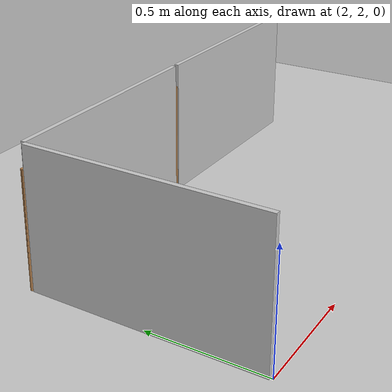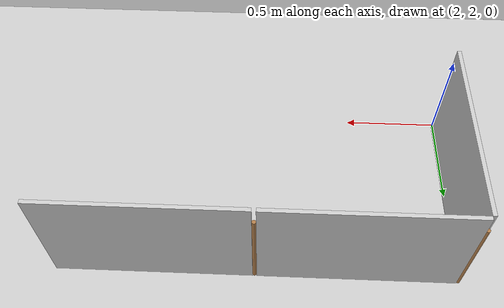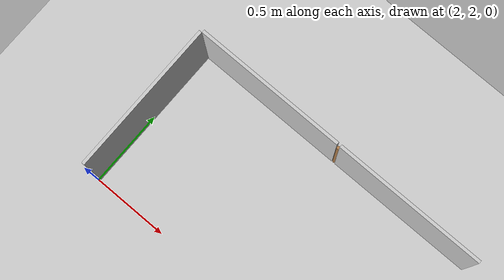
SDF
<sdf version="1.7">
 <world name="default">
  <model name="ground_plane">
   <static>true</static>
   <link name="link">
    <collision name="collision">
     <geometry><plane><normal>0 0 1</normal><size>1 1</size></plane></geometry>
    </collision>
    <visual name="visual">
     <geometry><plane><normal>0 0 1</normal><size>100 100</size></plane></geometry>
     <material>
      <ambient>0.8 0.8 0.8 1</ambient>
      <diffuse>0.8 0.8 0.8 1</diffuse>
      <specular>0.8 0.8 0.8 1</specular>
     </material>
    </visual>
    <inertial>
     <mass>1</mass>
     <inertia><ixx>1</ixx><ixy>0</ixy><ixz>0</ixz><iyy>1</iyy><iyz>0</iyz><izz>1</izz></inertia>
    </inertial>
   </link>
  </model>
  <model name="maze_1_6x5_clone_clone_clone_2_clone">
   <frame name="plywood_panel_0_0_b::__model__" attached_to="plywood_panel_0_0_b::main">
    <pose relative_to="__model__">0 0 0 0 -0 1.571</pose>
   </frame>
   <static>true</static>
   <link name="plywood_panel_0_0_b::main">
    <pose relative_to="plywood_panel_0_0_b::__model__">0 0 0 0 -0 0</pose>
    <collision name="collision">
     <pose>0 -0.5 0.3 -1.571 -0 -1.571</pose>
     <geometry><box><size>0.98 0.6 0.02</size></box></geometry>
    </collision>
    <visual name="visual">
     <pose>0.01 -0.01 0 3.14159 -1.57059 3.14159</pose>
     <geometry>
      <mesh>
       <scale>1 1 1</scale>
       <uri>/home/mayank/cognipilot/cranium/src/dream_world/models/plywood_panel/meshes/plywood.dae</uri>
      </mesh>
     </geometry>
    </visual>
   </link>
   <frame name="wooden_joint_0_0_b::__model__" attached_to="wooden_joint_0_0_b::link_0">
    <pose relative_to="__model__">0 0 0 0 -0 0</pose>
   </frame>
   <link name="wooden_joint_0_0_b::link_0">
    <pose relative_to="wooden_joint_0_0_b::__model__">0 0 0.25 0 -0 0</pose>
    <inertial>
     <mass>0.00215981</mass>
     <inertia>
      <ixx>0.00018028</ixx>
      <ixy>0</ixy>
      <ixz>0</ixz>
      <iyy>0.00018028</iyy>
      <iyz>0</iyz>
      <izz>5.8e-07</izz>
     </inertia>
    </inertial>
    <visual name="visual">
     <geometry><cylinder><radius>0.01</radius><length>0.5</length></cylinder></geometry>
     <material>
      <lighting>1</lighting>
      <script><uri>file://media/materials/scripts/gazebo.material</uri><name>Gazebo/Wood</name></script>
      <shader type="pixel"><normal_map>__default__</normal_map></shader>
      <ambient>0.3 0.3 0.3 1</ambient>
      <diffuse>0.7 0.7 0.7 1</diffuse>
      <specular>0.01 0.01 0.01 1</specular>
      <emissive>0 0 0 1</emissive>
     </material>
    </visual>
    <collision name="collision">
     <geometry><cylinder><radius>0.01</radius><length>0.5</length></cylinder></geometry>
     <surface>
      <friction>
       <ode><mu>1</mu><mu2>1</mu2><fdir1>0 0 0</fdir1><slip1>0</slip1><slip2>0</slip2></ode>
       <torsional>
        <coefficient>1</coefficient>
        <patch_radius>0</patch_radius>
        <surface_radius>0</surface_radius>
        <use_patch_radius>1</use_patch_radius>
        <ode><slip>0</slip></ode>
       </torsional>
      </friction>
      <bounce><restitution_coefficient>0</restitution_coefficient><threshold>1e+06</threshold></bounce>
      <contact>
       <collide_without_contact>0</collide_without_contact>
       <collide_without_contact_bitmask>1</collide_without_contact_bitmask>
       <collide_bitmask>1</collide_bitmask>
       <ode>
        <soft_cfm>0</soft_cfm>
        <soft_erp>0.2</soft_erp>
        <kp>1e+13</kp>
        <kd>1</kd>
        <max_vel>0.01</max_vel>
        <min_depth>0</min_depth>
       </ode>
       <bullet>
        <split_impulse>1</split_impulse>
        <split_impulse_penetration_threshold>-0.01</split_impulse_penetration_threshold>
        <soft_cfm>0</soft_cfm>
        <soft_erp>0.2</soft_erp>
        <kp>1e+13</kp>
        <kd>1</kd>
       </bullet>
      </contact>
     </surface>
    </collision>
   </link>
   <static>true</static>
   <pose>2 3 0 0 0 -1.5708</pose>
  </model>
  <model name="maze_1_6x5_clone_2_clone_clone_5_clone_0_clone">
   <frame name="plywood_panel_0_0_b::__model__" attached_to="plywood_panel_0_0_b::main">
    <pose relative_to="__model__">0 0 0 0 -0 1.571</pose>
   </frame>
   <static>true</static>
   <link name="plywood_panel_0_0_b::main">
    <pose relative_to="plywood_panel_0_0_b::__model__">0 0 0 0 -0 0</pose>
    <collision name="collision">
     <pose>0 -0.5 0.3 -1.571 -0 -1.571</pose>
     <geometry><box><size>0.98 0.6 0.02</size></box></geometry>
    </collision>
    <visual name="visual">
     <pose>0.01 -0.01 0 3.14159 -1.57059 3.14159</pose>
     <geometry>
      <mesh>
       <scale>1 1 1</scale>
       <uri>/home/mayank/cognipilot/cranium/src/dream_world/models/plywood_panel/meshes/plywood.dae</uri>
      </mesh>
     </geometry>
    </visual>
   </link>
   <frame name="wooden_joint_0_0_b::__model__" attached_to="wooden_joint_0_0_b::link_0">
    <pose relative_to="__model__">0 0 0 0 -0 0</pose>
   </frame>
   <link name="wooden_joint_0_0_b::link_0">
    <pose relative_to="wooden_joint_0_0_b::__model__">0 0 0.25 0 -0 0</pose>
    <inertial>
     <mass>0.00215981</mass>
     <inertia>
      <ixx>0.00018028</ixx>
      <ixy>0</ixy>
      <ixz>0</ixz>
      <iyy>0.00018028</iyy>
      <iyz>0</iyz>
      <izz>5.8e-07</izz>
     </inertia>
    </inertial>
    <visual name="visual">
     <geometry><cylinder><radius>0.01</radius><length>0.5</length></cylinder></geometry>
     <material>
      <lighting>1</lighting>
      <script><uri>file://media/materials/scripts/gazebo.material</uri><name>Gazebo/Wood</name></script>
      <shader type="pixel"><normal_map>__default__</normal_map></shader>
      <ambient>0.3 0.3 0.3 1</ambient>
      <diffuse>0.7 0.7 0.7 1</diffuse>
      <specular>0.01 0.01 0.01 1</specular>
      <emissive>0 0 0 1</emissive>
     </material>
    </visual>
    <collision name="collision">
     <geometry><cylinder><radius>0.01</radius><length>0.5</length></cylinder></geometry>
     <surface>
      <friction>
       <ode><mu>1</mu><mu2>1</mu2><fdir1>0 0 0</fdir1><slip1>0</slip1><slip2>0</slip2></ode>
       <torsional>
        <coefficient>1</coefficient>
        <patch_radius>0</patch_radius>
        <surface_radius>0</surface_radius>
        <use_patch_radius>1</use_patch_radius>
        <ode><slip>0</slip></ode>
       </torsional>
      </friction>
      <bounce><restitution_coefficient>0</restitution_coefficient><threshold>1e+06</threshold></bounce>
      <contact>
       <collide_without_contact>0</collide_without_contact>
       <collide_without_contact_bitmask>1</collide_without_contact_bitmask>
       <collide_bitmask>1</collide_bitmask>
       <ode>
        <soft_cfm>0</soft_cfm>
        <soft_erp>0.2</soft_erp>
        <kp>1e+13</kp>
        <kd>1</kd>
        <max_vel>0.01</max_vel>
        <min_depth>0</min_depth>
       </ode>
       <bullet>
        <split_impulse>1</split_impulse>
        <split_impulse_penetration_threshold>-0.01</split_impulse_penetration_threshold>
        <soft_cfm>0</soft_cfm>
        <soft_erp>0.2</soft_erp>
        <kp>1e+13</kp>
        <kd>1</kd>
       </bullet>
      </contact>
     </surface>
    </collision>
   </link>
   <static>true</static>
   <pose>2 3 0 0 0 -4e-06</pose>
  </model>
  <model name="maze_1_6x5_clone_2_clone_clone_5_clone_0_clone_0">
   <frame name="plywood_panel_0_0_b::__model__" attached_to="plywood_panel_0_0_b::main">
    <pose relative_to="__model__">0 0 0 0 -0 1.571</pose>
   </frame>
   <static>true</static>
   <link name="plywood_panel_0_0_b::main">
    <pose relative_to="plywood_panel_0_0_b::__model__">0 0 0 0 -0 0</pose>
    <collision name="collision">
     <pose>0 -0.5 0.3 -1.571 -0 -1.571</pose>
     <geometry><box><size>0.98 0.6 0.02</size></box></geometry>
    </collision>
    <visual name="visual">
     <pose>0.01 -0.01 0 3.14159 -1.57059 3.14159</pose>
     <geometry>
      <mesh>
       <scale>1 1 1</scale>
       <uri>/home/mayank/cognipilot/cranium/src/dream_world/models/plywood_panel/meshes/plywood.dae</uri>
      </mesh>
     </geometry>
    </visual>
   </link>
   <frame name="wooden_joint_0_0_b::__model__" attached_to="wooden_joint_0_0_b::link_0">
    <pose relative_to="__model__">0 0 0 0 -0 0</pose>
   </frame>
   <link name="wooden_joint_0_0_b::link_0">
    <pose relative_to="wooden_joint_0_0_b::__model__">0 0 0.25 0 -0 0</pose>
    <inertial>
     <mass>0.00215981</mass>
     <inertia>
      <ixx>0.00018028</ixx>
      <ixy>0</ixy>
      <ixz>0</ixz>
      <iyy>0.00018028</iyy>
      <iyz>0</iyz>
      <izz>5.8e-07</izz>
     </inertia>
    </inertial>
    <visual name="visual">
     <geometry><cylinder><radius>0.01</radius><length>0.5</length></cylinder></geometry>
     <material>
      <lighting>1</lighting>
      <script><uri>file://media/materials/scripts/gazebo.material</uri><name>Gazebo/Wood</name></script>
      <shader type="pixel"><normal_map>__default__</normal_map></shader>
      <ambient>0.3 0.3 0.3 1</ambient>
      <diffuse>0.7 0.7 0.7 1</diffuse>
      <specular>0.01 0.01 0.01 1</specular>
      <emissive>0 0 0 1</emissive>
     </material>
    </visual>
    <collision name="collision">
     <geometry><cylinder><radius>0.01</radius><length>0.5</length></cylinder></geometry>
     <surface>
      <friction>
       <ode><mu>1</mu><mu2>1</mu2><fdir1>0 0 0</fdir1><slip1>0</slip1><slip2>0</slip2></ode>
       <torsional>
        <coefficient>1</coefficient>
        <patch_radius>0</patch_radius>
        <surface_radius>0</surface_radius>
        <use_patch_radius>1</use_patch_radius>
        <ode><slip>0</slip></ode>
       </torsional>
      </friction>
      <bounce><restitution_coefficient>0</restitution_coefficient><threshold>1e+06</threshold></bounce>
      <contact>
       <collide_without_contact>0</collide_without_contact>
       <collide_without_contact_bitmask>1</collide_without_contact_bitmask>
       <collide_bitmask>1</collide_bitmask>
       <ode>
        <soft_cfm>0</soft_cfm>
        <soft_erp>0.2</soft_erp>
        <kp>1e+13</kp>
        <kd>1</kd>
        <max_vel>0.01</max_vel>
        <min_depth>0</min_depth>
       </ode>
       <bullet>
        <split_impulse>1</split_impulse>
        <split_impulse_penetration_threshold>-0.01</split_impulse_penetration_threshold>
        <soft_cfm>0</soft_cfm>
        <soft_erp>0.2</soft_erp>
        <kp>1e+13</kp>
        <kd>1</kd>
       </bullet>
      </contact>
     </surface>
    </collision>
   </link>
   <static>true</static>
   <pose>3 3 0 0 0 -4e-06</pose>
  </model>
 </world>
</sdf>
